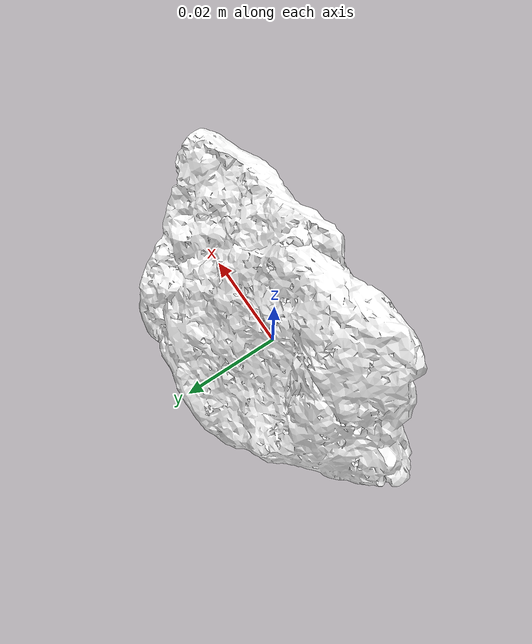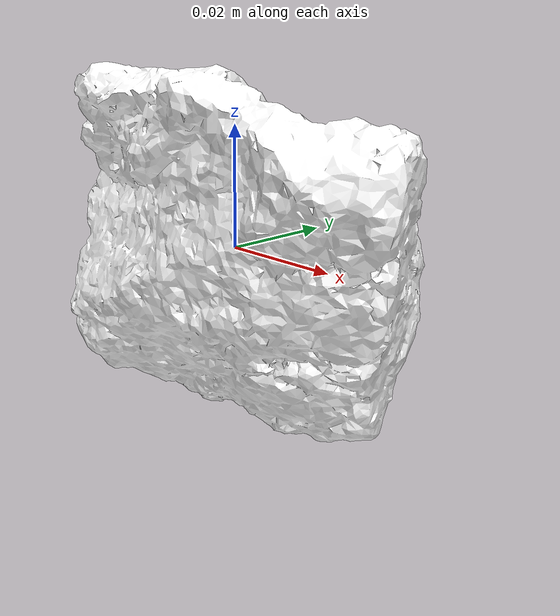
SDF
<?xml version="1.0" ?>
<sdf version="1.9">
  <model name="rock_5">
    <static>true</static>
    <link name="rock_link">

      <!-- Visual -->
      <visual name="visual">
        <geometry>
          <mesh>
            <uri>model://rock_5/meshes/rock_5.obj</uri>
          </mesh>
        </geometry>
        <material>
          <ambient>1 1 1 1</ambient>
          <diffuse>1 1 1 1</diffuse>
          <pbr>
            <metal>
              <albedo_map>model://rock_5/meshes/rock_small_diffuse.jpg</albedo_map>
            </metal>
          </pbr>
        </material>
      </visual>

      <!-- Collision -->
      <collision name="collision">
        <geometry>
          <mesh>
            <uri>model://rock_5/meshes/rock_5.obj</uri>
          </mesh>
        </geometry>
      </collision>

    </link>
  </model>
</sdf>
